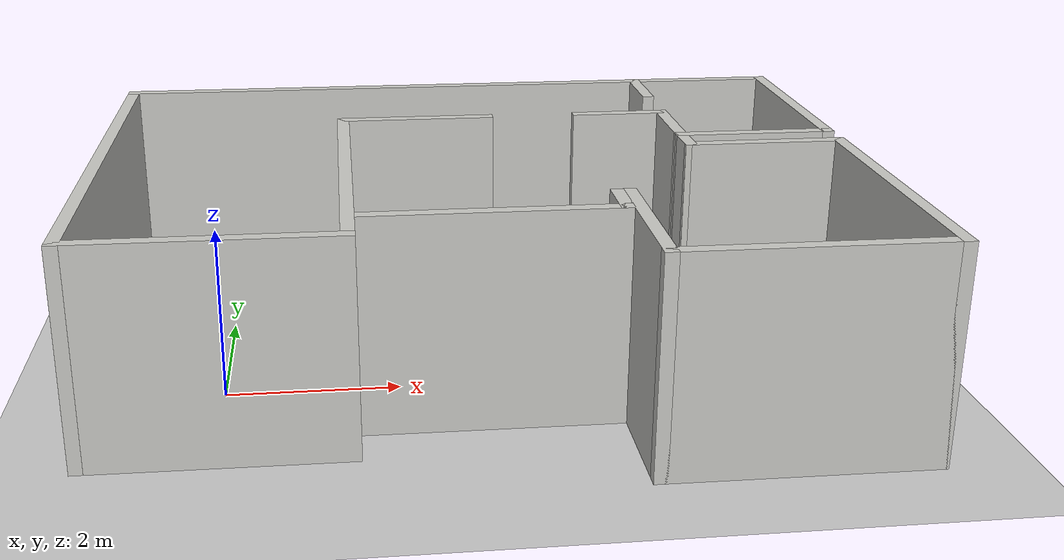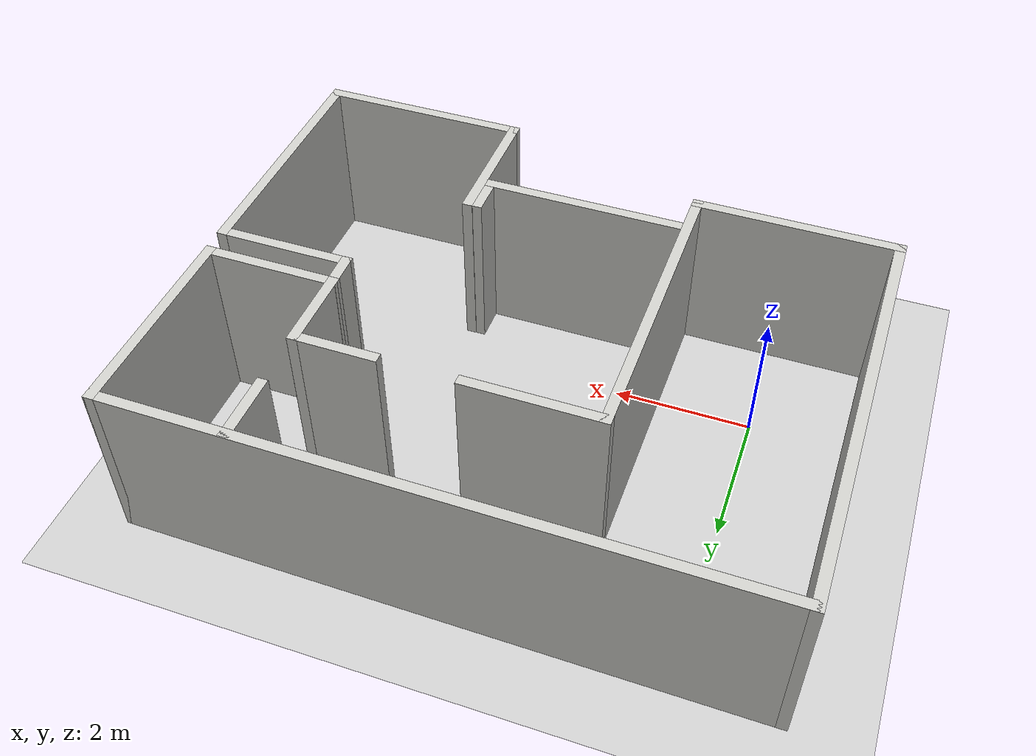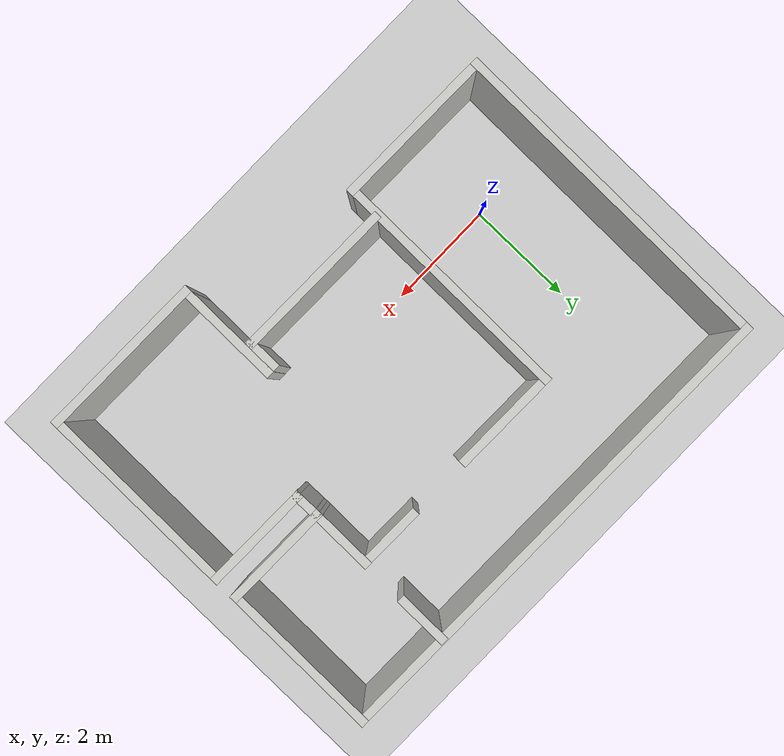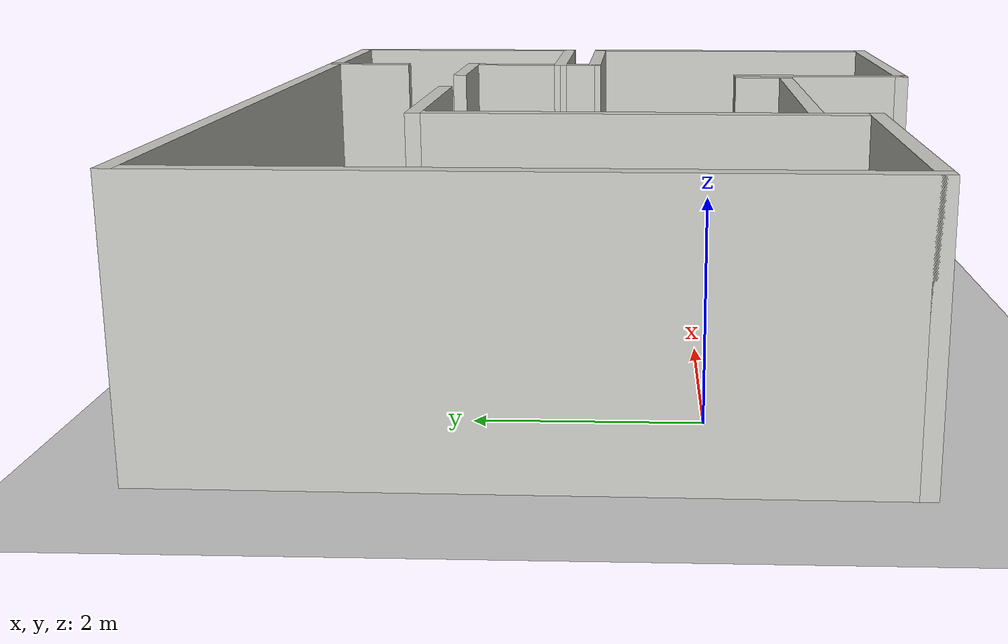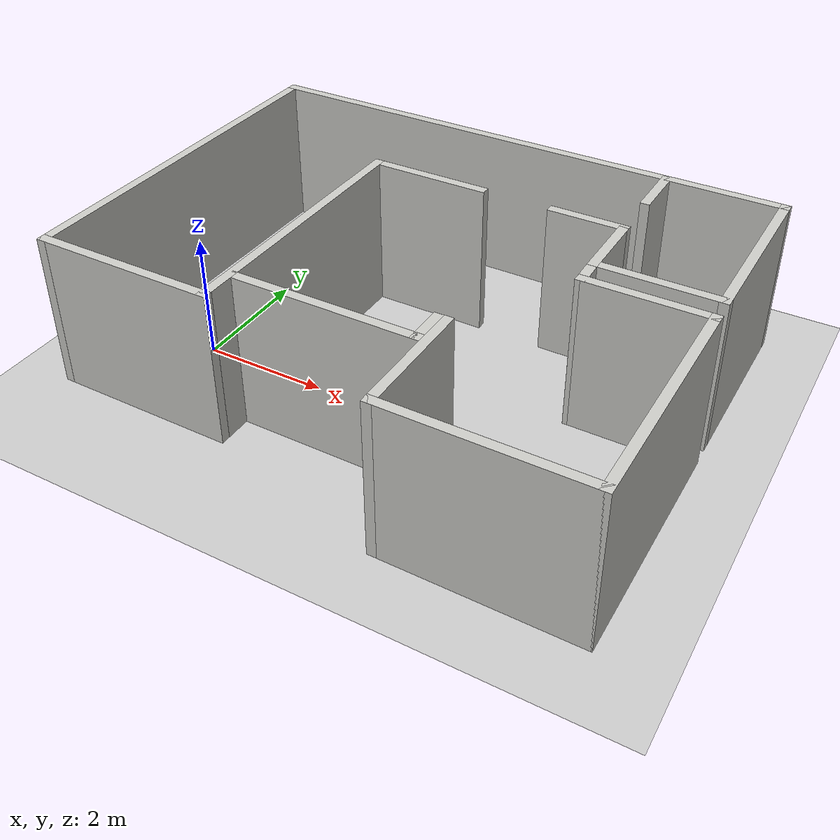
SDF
<sdf version="1.7">
 <world name="default">
  <light name="sun" type="directional">
   <pose>0 0 10 0 -0 0</pose>
   <diffuse>0.8 0.8 0.8 1</diffuse>
   <specular>0.2 0.2 0.2 1</specular>
   <attenuation>
    <range>1000</range>
    <constant>0.9</constant>
    <linear>0.01</linear>
    <quadratic>0.001</quadratic>
   </attenuation>
   <direction>-0.5 0.1 -0.9</direction>
   <spot><inner_angle>0</inner_angle><outer_angle>0</outer_angle><falloff>0</falloff></spot>
  </light>
  <model name="ground_plane">
   <static>1</static>
   <link name="link">
    <collision name="collision">
     <geometry><plane><normal>0 0 1</normal><size>100 100</size></plane></geometry>
     <surface>
      <contact><collide_bitmask>65535</collide_bitmask></contact>
      <friction><ode><mu>100</mu><mu2>50</mu2></ode></friction>
     </surface>
    </collision>
    <visual name="visual">
     <cast_shadows>0</cast_shadows>
     <geometry><plane><normal>0 0 1</normal><size>100 100</size></plane></geometry>
     <material>
      <script><uri>file://media/materials/scripts/gazebo.material</uri><name>Gazebo/Grey</name></script>
     </material>
    </visual>
   </link>
  </model>
  <gravity>0 0 -9.8</gravity>
  <magnetic_field>6e-06 2.3e-05 -4.2e-05</magnetic_field>
  <atmosphere type="adiabatic"/>
  <physics type="ode">
   <max_step_size>0.001</max_step_size>
   <real_time_factor>1</real_time_factor>
   <real_time_update_rate>1000</real_time_update_rate>
  </physics>
  <scene><ambient>0.4 0.4 0.4 1</ambient><background>0.7 0.7 0.7 1</background><shadows>1</shadows></scene>
  <spherical_coordinates>
   <surface_model>EARTH_WGS84</surface_model>
   <latitude_deg>0</latitude_deg>
   <longitude_deg>0</longitude_deg>
   <elevation>0</elevation>
   <heading_deg>0</heading_deg>
  </spherical_coordinates>
  <model name="second_world">
   <pose>3.03139 1.00601 -0 0 -0 3.13484</pose>
   <link name="Wall_0">
    <collision name="Wall_0_Collision">
     <geometry><box><size>3.1 0.15 2.5</size></box></geometry>
     <pose>0 0 1.25 0 -0 0</pose>
    </collision>
    <visual name="Wall_0_Visual">
     <pose>0 0 1.25 0 -0 0</pose>
     <geometry><box><size>3.1 0.15 2.5</size></box></geometry>
     <material>
      <script><uri>file://media/materials/scripts/gazebo.material</uri><name>Gazebo/CeilingTiled</name></script>
      <ambient>1 1 1 1</ambient>
     </material>
     <meta><layer>0</layer></meta>
    </visual>
    <pose>-2.95454 3.4405 0 0 -0 0</pose>
   </link>
   <link name="Wall_11">
    <collision name="Wall_11_Collision">
     <geometry><box><size>2 0.15 2.5</size></box></geometry>
     <pose>0 0 1.25 0 -0 0</pose>
    </collision>
    <visual name="Wall_11_Visual">
     <pose>0 0 1.25 0 -0 0</pose>
     <geometry><box><size>2 0.15 2.5</size></box></geometry>
     <material>
      <script><uri>file://media/materials/scripts/gazebo.material</uri><name>Gazebo/CeilingTiled</name></script>
      <ambient>1 1 1 1</ambient>
     </material>
     <meta><layer>0</layer></meta>
    </visual>
    <pose>-3.49546 -0.590501 0 0 -0 0</pose>
   </link>
   <link name="Wall_12">
    <collision name="Wall_12_Collision">
     <geometry><box><size>1.25 0.15 2.5</size></box></geometry>
     <pose>0 0 1.25 0 -0 0</pose>
    </collision>
    <visual name="Wall_12_Visual">
     <pose>0 0 1.25 0 -0 0</pose>
     <geometry><box><size>1.25 0.15 2.5</size></box></geometry>
     <material>
      <script><uri>file://media/materials/scripts/gazebo.material</uri><name>Gazebo/CeilingTiled</name></script>
      <ambient>1 1 1 1</ambient>
     </material>
     <meta><layer>0</layer></meta>
    </visual>
    <pose>-2.57045 -1.1405 0 0 -0 -1.5708</pose>
   </link>
   <link name="Wall_13">
    <collision name="Wall_13_Collision">
     <geometry><box><size>1.25001 0.15 2.5</size></box></geometry>
     <pose>0 0 1.25 0 -0 0</pose>
    </collision>
    <visual name="Wall_13_Visual">
     <pose>0 0 1.25 0 -0 0</pose>
     <geometry><box><size>1.25001 0.15 2.5</size></box></geometry>
     <material>
      <script><uri>file://media/materials/scripts/gazebo.material</uri><name>Gazebo/CeilingTiled</name></script>
      <ambient>1 1 1 1</ambient>
     </material>
     <meta><layer>0</layer></meta>
    </visual>
    <pose>-2.02046 -1.6905 0 0 -0 0</pose>
   </link>
   <link name="Wall_17">
    <collision name="Wall_17_Collision">
     <geometry><box><size>1 0.15 2.5</size></box></geometry>
     <pose>0 0 1.25 0 -0 0</pose>
    </collision>
    <visual name="Wall_17_Visual">
     <pose>0 0 1.25 0 -0 0</pose>
     <geometry><box><size>1 0.15 2.5</size></box></geometry>
     <material>
      <script><uri>file://media/materials/scripts/gazebo.material</uri><name>Gazebo/CeilingTiled</name></script>
      <ambient>1 1 1 1</ambient>
     </material>
     <meta><layer>0</layer></meta>
    </visual>
    <pose>-2.5792 -2.99987 0 0 -0 1.5708</pose>
   </link>
   <link name="Wall_19">
    <collision name="Wall_19_Collision">
     <geometry><box><size>2 0.15 2.5</size></box></geometry>
     <pose>0 0 1.25 0 -0 0</pose>
    </collision>
    <visual name="Wall_19_Visual">
     <pose>0 0 1.25 0 -0 0</pose>
     <geometry><box><size>2 0.15 2.5</size></box></geometry>
     <material>
      <script><uri>file://media/materials/scripts/gazebo.material</uri><name>Gazebo/CeilingTiled</name></script>
      <ambient>1 1 1 1</ambient>
     </material>
     <meta><layer>0</layer></meta>
    </visual>
    <pose>-3.50454 -0.159499 0 0 -0 0</pose>
   </link>
   <link name="Wall_2">
    <collision name="Wall_2_Collision">
     <geometry><box><size>3.75 0.15 2.5</size></box></geometry>
     <pose>0 0 1.25 0 -0 0</pose>
    </collision>
    <visual name="Wall_2_Visual">
     <pose>0 0 1.25 0 -0 0</pose>
     <geometry><box><size>3.75 0.15 2.5</size></box></geometry>
     <material>
      <script><uri>file://media/materials/scripts/gazebo.material</uri><name>Gazebo/CeilingTiled</name></script>
      <ambient>1 1 1 1</ambient>
     </material>
     <meta><layer>0</layer></meta>
    </visual>
    <pose>-4.42955 1.6405 0 0 -0 -1.5708</pose>
   </link>
   <link name="Wall_21">
    <collision name="Wall_21_Collision">
     <geometry><box><size>0.581098 0.15 2.5</size></box></geometry>
     <pose>0 0 1.25 0 -0 0</pose>
    </collision>
    <visual name="Wall_21_Visual">
     <pose>0 0 1.25 0 -0 0</pose>
     <geometry><box><size>0.581098 0.15 2.5</size></box></geometry>
     <material>
      <script><uri>file://media/materials/scripts/gazebo.material</uri><name>Gazebo/CeilingTiled</name></script>
      <ambient>1 1 1 1</ambient>
     </material>
     <meta><layer>0</layer></meta>
    </visual>
    <pose>-2.575 -0.375 0 0 -0 -1.54971</pose>
   </link>
   <link name="Wall_23">
    <collision name="Wall_23_Collision">
     <geometry><box><size>2 0.15 2.5</size></box></geometry>
     <pose>0 0 1.25 0 -0 0</pose>
    </collision>
    <visual name="Wall_23_Visual">
     <pose>0 0 1.25 0 -0 0</pose>
     <geometry><box><size>2 0.15 2.5</size></box></geometry>
     <material>
      <script><uri>file://media/materials/scripts/gazebo.material</uri><name>Gazebo/CeilingTiled</name></script>
      <ambient>1 1 1 1</ambient>
     </material>
     <meta><layer>0</layer></meta>
    </visual>
    <pose>-1.47955 2.5155 0 0 -0 -1.5708</pose>
   </link>
   <link name="Wall_25">
    <collision name="Wall_25_Collision">
     <geometry><box><size>3 0.15 2.5</size></box></geometry>
     <pose>0 0 1.25 0 -0 0</pose>
    </collision>
    <visual name="Wall_25_Visual">
     <pose>0 0 1.25 0 -0 0</pose>
     <geometry><box><size>3 0.15 2.5</size></box></geometry>
     <material>
      <script><uri>file://media/materials/scripts/gazebo.material</uri><name>Gazebo/CeilingTiled</name></script>
      <ambient>1 1 1 1</ambient>
     </material>
     <meta><layer>0</layer></meta>
    </visual>
    <pose>0.086096 2.0958 0 0 -0 3.14159</pose>
   </link>
   <link name="Wall_27">
    <collision name="Wall_27_Collision">
     <geometry><box><size>0.65 0.15 2.5</size></box></geometry>
     <pose>0 0 1.25 0 -0 0</pose>
    </collision>
    <visual name="Wall_27_Visual">
     <pose>0 0 1.25 0 -0 0</pose>
     <geometry><box><size>0.65 0.15 2.5</size></box></geometry>
     <material>
      <script><uri>file://media/materials/scripts/gazebo.material</uri><name>Gazebo/CeilingTiled</name></script>
      <ambient>1 1 1 1</ambient>
     </material>
     <meta><layer>0</layer></meta>
    </visual>
    <pose>-1.3389 1.8458 0 0 -0 -1.5708</pose>
   </link>
   <link name="Wall_4">
    <collision name="Wall_4_Collision">
     <geometry><box><size>3 0.15 2.5</size></box></geometry>
     <pose>0 0 1.25 0 -0 0</pose>
    </collision>
    <visual name="Wall_4_Visual">
     <pose>0 0 1.25 0 -0 0</pose>
     <geometry><box><size>3 0.15 2.5</size></box></geometry>
     <material>
      <script><uri>file://media/materials/scripts/gazebo.material</uri><name>Gazebo/CeilingTiled</name></script>
      <ambient>1 1 1 1</ambient>
     </material>
     <meta><layer>0</layer></meta>
    </visual>
    <pose>-4.42045 -2.0155 0 0 -0 -1.5708</pose>
   </link>
   <link name="Wall_5">
    <collision name="Wall_5_Collision">
     <geometry><box><size>9 0.15 2.5</size></box></geometry>
     <pose>0 0 1.25 0 -0 0</pose>
    </collision>
    <visual name="Wall_5_Visual">
     <pose>0 0 1.25 0 -0 0</pose>
     <geometry><box><size>9 0.15 2.5</size></box></geometry>
     <material>
      <script><uri>file://media/materials/scripts/gazebo.material</uri><name>Gazebo/CeilingTiled</name></script>
      <ambient>1 1 1 1</ambient>
     </material>
     <meta><layer>0</layer></meta>
    </visual>
    <pose>0.004545 -3.4405 0 0 -0 0</pose>
   </link>
   <link name="Wall_6">
    <collision name="Wall_6_Collision">
     <geometry><box><size>6.25 0.15 2.5</size></box></geometry>
     <pose>0 0 1.25 0 -0 0</pose>
    </collision>
    <visual name="Wall_6_Visual">
     <pose>0 0 1.25 0 -0 0</pose>
     <geometry><box><size>6.25 0.15 2.5</size></box></geometry>
     <material>
      <script><uri>file://media/materials/scripts/gazebo.material</uri><name>Gazebo/CeilingTiled</name></script>
      <ambient>1 1 1 1</ambient>
     </material>
     <meta><layer>0</layer></meta>
    </visual>
    <pose>4.42955 -0.390501 0 0 -0 1.5708</pose>
   </link>
   <link name="Wall_7">
    <collision name="Wall_7_Collision">
     <geometry><box><size>3 0.15 2.5</size></box></geometry>
     <pose>0 0 1.25 0 -0 0</pose>
    </collision>
    <visual name="Wall_7_Visual">
     <pose>0 0 1.25 0 -0 0</pose>
     <geometry><box><size>3 0.15 2.5</size></box></geometry>
     <material>
      <script><uri>file://media/materials/scripts/gazebo.material</uri><name>Gazebo/CeilingTiled</name></script>
      <ambient>1 1 1 1</ambient>
     </material>
     <meta><layer>0</layer></meta>
    </visual>
    <pose>3.00454 2.6595 0 0 -0 3.14159</pose>
   </link>
   <link name="Wall_8">
    <collision name="Wall_8_Collision">
     <geometry><box><size>4.5 0.15 2.5</size></box></geometry>
     <pose>0 0 1.25 0 -0 0</pose>
    </collision>
    <visual name="Wall_8_Visual">
     <pose>0 0 1.25 0 -0 0</pose>
     <geometry><box><size>4.5 0.15 2.5</size></box></geometry>
     <material>
      <script><uri>file://media/materials/scripts/gazebo.material</uri><name>Gazebo/CeilingTiled</name></script>
      <ambient>1 1 1 1</ambient>
     </material>
     <meta><layer>0</layer></meta>
    </visual>
    <pose>1.57954 0.484499 0 0 -0 -1.5708</pose>
   </link>
   <link name="Wall_9">
    <collision name="Wall_9_Collision">
     <geometry><box><size>2 0.15 2.5</size></box></geometry>
     <pose>0 0 1.25 0 -0 0</pose>
    </collision>
    <visual name="Wall_9_Visual">
     <pose>0 0 1.25 0 -0 0</pose>
     <geometry><box><size>2 0.15 2.5</size></box></geometry>
     <material>
      <script><uri>file://media/materials/scripts/gazebo.material</uri><name>Gazebo/CeilingTiled</name></script>
      <ambient>1 1 1 1</ambient>
     </material>
     <meta><layer>0</layer></meta>
    </visual>
    <pose>0.654545 -1.6905 0 0 -0 3.14159</pose>
   </link>
   <static>1</static>
  </model>
 </world>
</sdf>
